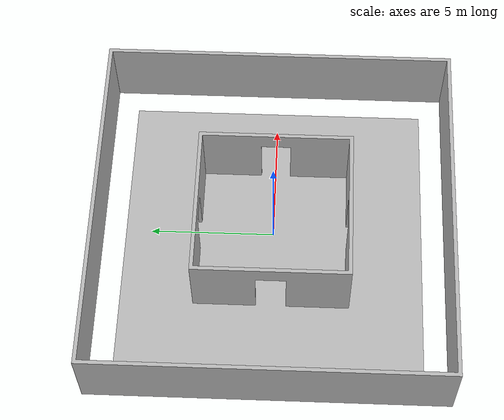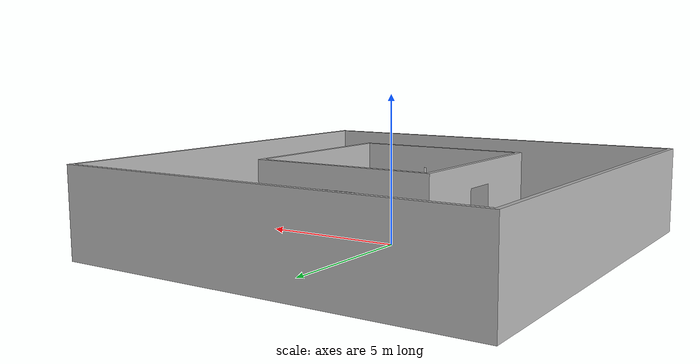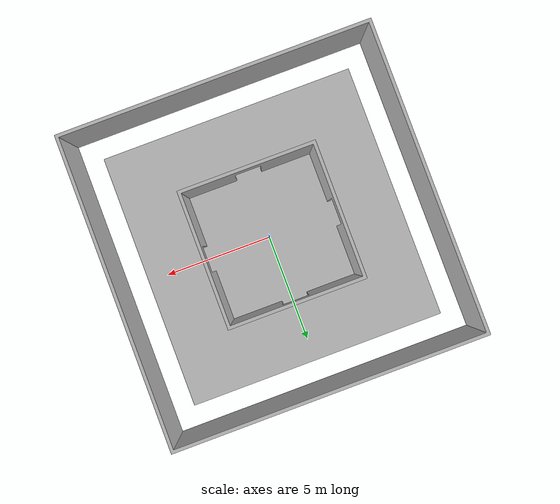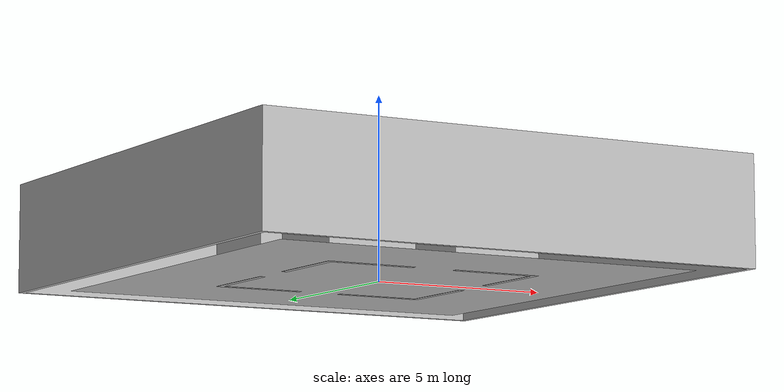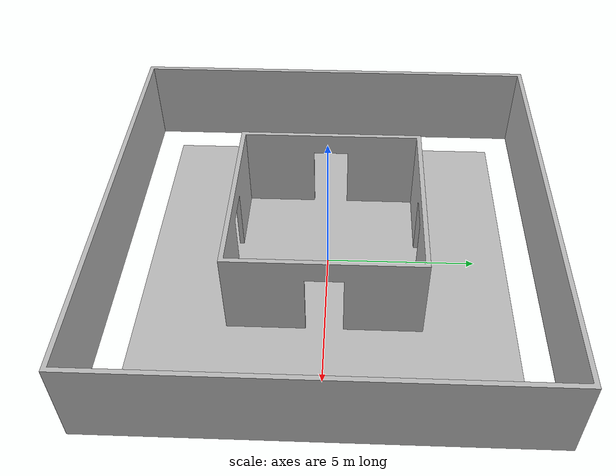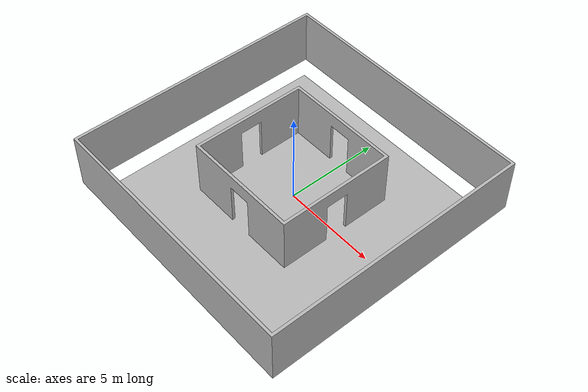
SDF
<?xml version='1.0'?>
<sdf version='1.7'>
  <model name='nesting_room_mesh'>
    <!-- 由桌面 map.obj 复刻当前 nesting_room 墙体几何（网格形式）：
         4 外墙 + 4 内墙(各 2 侧段) + 4 门楣 + 4 角柱，
         门洞 1.2x2.25m、墙厚 0.15m、墙高 3.0m，与世界原点对齐。 -->
    <static>1</static>
    <link name='link'>
      <pose>0 0 0 0 0 0</pose>
      <collision name='mesh_collision'>
        <geometry>
          <mesh>
            <uri>model://nesting_room_mesh/meshes/map.stl</uri>
            <scale>1 1 1</scale>
          </mesh>
        </geometry>
      </collision>
      <visual name='mesh_visual'>
        <geometry>
          <mesh>
            <uri>model://nesting_room_mesh/meshes/map.obj</uri>
            <scale>1 1 1</scale>
          </mesh>
        </geometry>
      </visual>
      <!-- 地面贴纸（地皮）：map_ground.png 贴图四边面，视觉 only，无碰撞 -->
      <visual name='floor_visual'>
        <pose>0 0 0 0 0 0</pose>
        <cast_shadows>0</cast_shadows>
        <geometry>
          <mesh>
            <uri>model://nesting_room_mesh/meshes/floor_ground.obj</uri>
            <scale>1 1 1</scale>
          </mesh>
        </geometry>
        <material>
          <script>
            <uri>model://nesting_room_mesh/materials/scripts</uri>
            <uri>model://nesting_room_mesh/materials/textures</uri>
            <name>room_floor</name>
          </script>
        </material>
      </visual>
    </link>
  </model>
</sdf>
